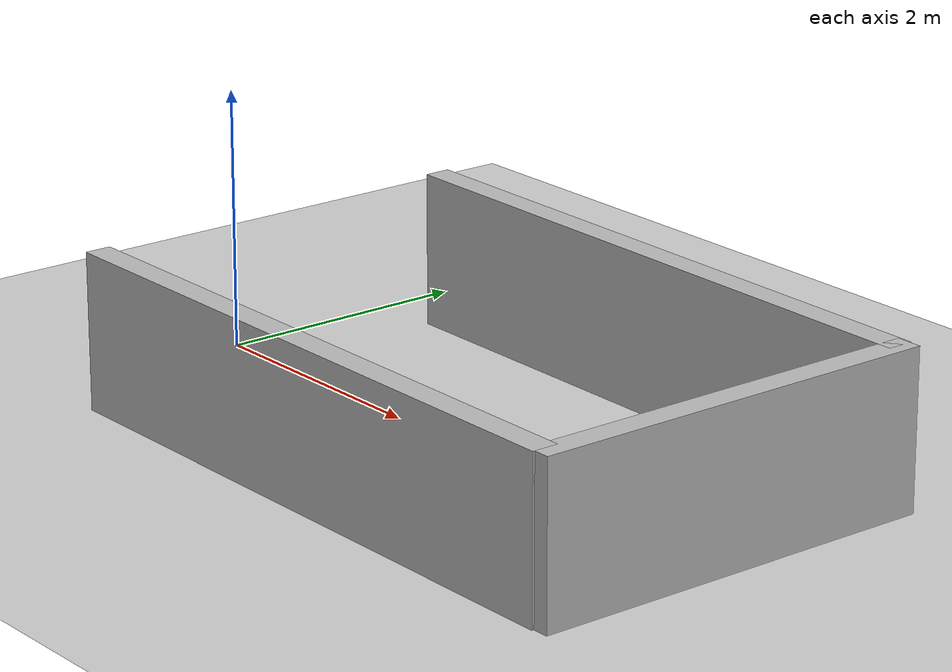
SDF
<?xml version="1.0"?>
<sdf version="1.6">
  <world name="v2-04f-maneuver-s4805">
    <gravity>0 0 -9.81</gravity>
    <physics name="v2_deterministic" type="ode">
      <max_step_size>0.002</max_step_size>
      <real_time_update_rate>500</real_time_update_rate>
    </physics>
    <include>
      <uri>model://sun</uri>
    </include>
    <include>
      <uri>model://ground_plane</uri>
    </include>
    <model name="bay-left">
      <static>true</static>
      <pose>3.015251507 1.511497674 0.600000000 0 0 -0.004866683</pose>
      <link name="link">
        <collision name="collision">
          <geometry>
            <box>
              <size>5.000000 0.200000 1.200000</size>
            </box>
          </geometry>
        </collision>
        <visual name="visual">
          <geometry>
            <box>
              <size>5.000000 0.200000 1.200000</size>
            </box>
          </geometry>
        </visual>
      </link>
    </model>
    <model name="bay-right">
      <static>true</static>
      <pose>2.978908086 -1.524405412 0.600000000 0 0 -0.000950259</pose>
      <link name="link">
        <collision name="collision">
          <geometry>
            <box>
              <size>5.000000 0.200000 1.200000</size>
            </box>
          </geometry>
        </collision>
        <visual name="visual">
          <geometry>
            <box>
              <size>5.000000 0.200000 1.200000</size>
            </box>
          </geometry>
        </visual>
      </link>
    </model>
    <model name="bay-back">
      <static>true</static>
      <pose>5.503985917 -0.011248026 0.600000000 0 0 -0.000481605</pose>
      <link name="link">
        <collision name="collision">
          <geometry>
            <box>
              <size>0.200000 3.200000 1.200000</size>
            </box>
          </geometry>
        </collision>
        <visual name="visual">
          <geometry>
            <box>
              <size>0.200000 3.200000 1.200000</size>
            </box>
          </geometry>
        </visual>
      </link>
    </model>
  </world>
</sdf>
